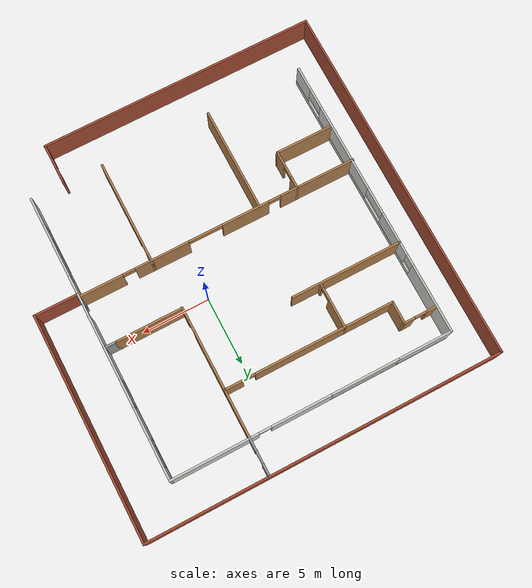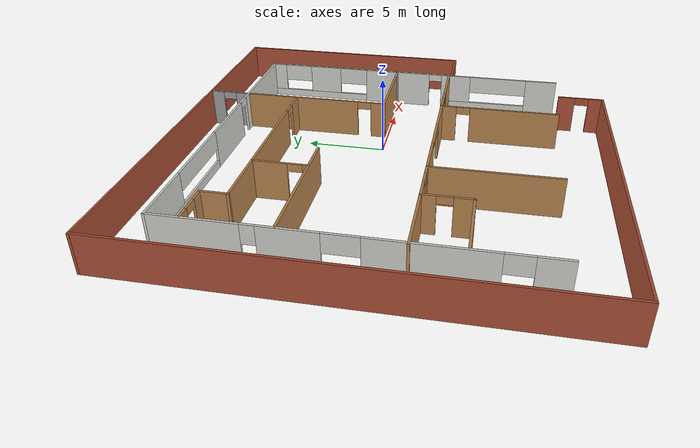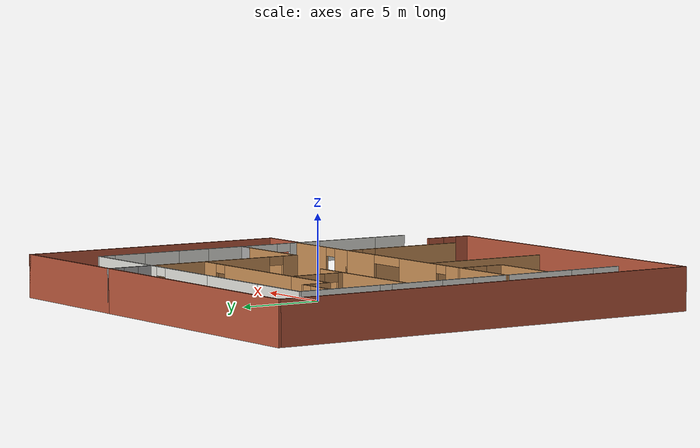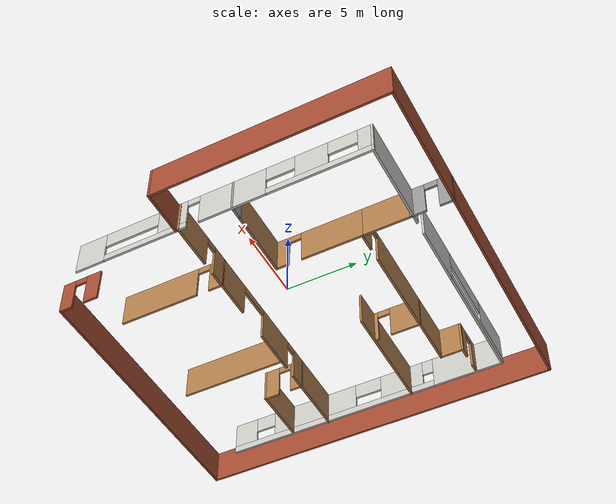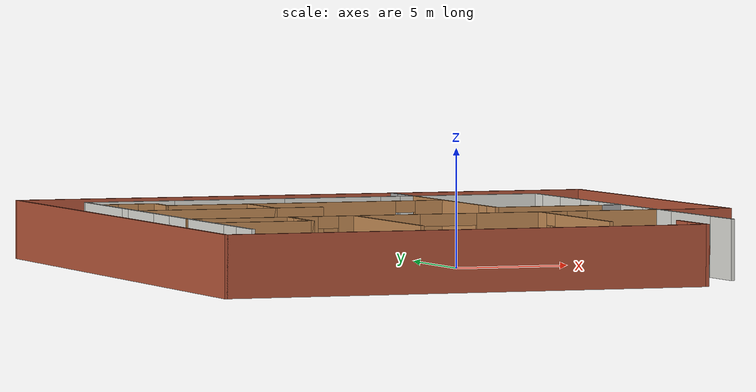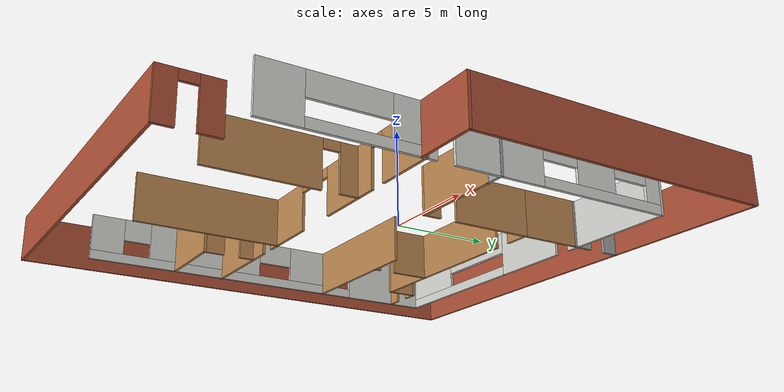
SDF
<?xml version='1.0'?>
<sdf version='1.6'>
  <model name='myWorld'>
    <pose frame=''>-2.2264 -0.874367 0 0 -0 0</pose>
    <link name='Wall_0'>
      <pose frame=''>-10.7788 0.167812 0 0 0 -1.5708</pose>
      <visual name='Wall_0_Visual_0'>
        <pose frame=''>-8.06574 0 1.25 0 -0 0</pose>
        <geometry>
          <box>
            <size>5.11851 0.15 2.5</size>
          </box>
        </geometry>
        <material>
          <script>
            <uri>file://media/materials/scripts/gazebo.material</uri>
            <name>Gazebo/CeilingTiled</name>
          </script>
          <ambient>0.435294 0.796078 0.67451 1</ambient>
        </material>
        <meta>
          <layer>0</layer>
        </meta>
      </visual>
      <collision name='Wall_0_Collision_0'>
        <geometry>
          <box>
            <size>5.11851 0.15 2.5</size>
          </box>
        </geometry>
        <pose frame=''>-8.06574 0 1.25 0 -0 0</pose>
      </collision>
      <visual name='Wall_0_Visual_1'>
        <pose frame=''>2.55926 0 0.25 0 -0 0</pose>
        <geometry>
          <box>
            <size>16.1315 0.15 0.5</size>
          </box>
        </geometry>
        <material>
          <script>
            <uri>file://media/materials/scripts/gazebo.material</uri>
            <name>Gazebo/CeilingTiled</name>
          </script>
          <ambient>0.435294 0.796078 0.67451 1</ambient>
        </material>
        <meta>
          <layer>0</layer>
        </meta>
      </visual>
      <collision name='Wall_0_Collision_1'>
        <geometry>
          <box>
            <size>16.1315 0.15 0.5</size>
          </box>
        </geometry>
        <pose frame=''>2.55926 0 0.25 0 -0 0</pose>
      </collision>
      <visual name='Wall_0_Visual_2'>
        <pose frame=''>-3.05702 0 1.5 0 -0 0</pose>
        <geometry>
          <box>
            <size>3.29893 0.15 2</size>
          </box>
        </geometry>
        <material>
          <script>
            <uri>file://media/materials/scripts/gazebo.material</uri>
            <name>Gazebo/CeilingTiled</name>
          </script>
          <ambient>0.435294 0.796078 0.67451 1</ambient>
        </material>
        <meta>
          <layer>0</layer>
        </meta>
      </visual>
      <collision name='Wall_0_Collision_2'>
        <geometry>
          <box>
            <size>3.29893 0.15 2</size>
          </box>
        </geometry>
        <pose frame=''>-3.05702 0 1.5 0 -0 0</pose>
      </collision>
      <visual name='Wall_0_Visual_3'>
        <pose frame=''>3.95094 0 1.5 0 -0 0</pose>
        <geometry>
          <box>
            <size>6.717 0.15 2</size>
          </box>
        </geometry>
        <material>
          <script>
            <uri>file://media/materials/scripts/gazebo.material</uri>
            <name>Gazebo/CeilingTiled</name>
          </script>
          <ambient>0.435294 0.796078 0.67451 1</ambient>
        </material>
        <meta>
          <layer>0</layer>
        </meta>
      </visual>
      <collision name='Wall_0_Collision_3'>
        <geometry>
          <box>
            <size>6.717 0.15 2</size>
          </box>
        </geometry>
        <pose frame=''>3.95094 0 1.5 0 -0 0</pose>
      </collision>
      <visual name='Wall_0_Visual_4'>
        <pose frame=''>9.71722 0 1.5 0 -0 0</pose>
        <geometry>
          <box>
            <size>1.81556 0.15 2</size>
          </box>
        </geometry>
        <material>
          <script>
            <uri>file://media/materials/scripts/gazebo.material</uri>
            <name>Gazebo/CeilingTiled</name>
          </script>
          <ambient>0.435294 0.796078 0.67451 1</ambient>
        </material>
        <meta>
          <layer>0</layer>
        </meta>
      </visual>
      <collision name='Wall_0_Collision_4'>
        <geometry>
          <box>
            <size>1.81556 0.15 2</size>
          </box>
        </geometry>
        <pose frame=''>9.71722 0 1.5 0 -0 0</pose>
      </collision>
      <visual name='Wall_0_Visual_5'>
        <pose frame=''>-5.10649 0 1.9 0 -0 0</pose>
        <geometry>
          <box>
            <size>0.8 0.15 1.2</size>
          </box>
        </geometry>
        <material>
          <script>
            <uri>file://media/materials/scripts/gazebo.material</uri>
            <name>Gazebo/CeilingTiled</name>
          </script>
          <ambient>0.435294 0.796078 0.67451 1</ambient>
        </material>
        <meta>
          <layer>0</layer>
        </meta>
      </visual>
      <collision name='Wall_0_Collision_5'>
        <geometry>
          <box>
            <size>0.8 0.15 1.2</size>
          </box>
        </geometry>
        <pose frame=''>-5.10649 0 1.9 0 -0 0</pose>
      </collision>
      <visual name='Wall_0_Visual_6'>
        <pose frame=''>-0.407555 0 1.9 0 -0 0</pose>
        <geometry>
          <box>
            <size>2 0.15 1.2</size>
          </box>
        </geometry>
        <material>
          <script>
            <uri>file://media/materials/scripts/gazebo.material</uri>
            <name>Gazebo/CeilingTiled</name>
          </script>
          <ambient>0.435294 0.796078 0.67451 1</ambient>
        </material>
        <meta>
          <layer>0</layer>
        </meta>
      </visual>
      <collision name='Wall_0_Collision_6'>
        <geometry>
          <box>
            <size>2 0.15 1.2</size>
          </box>
        </geometry>
        <pose frame=''>-0.407555 0 1.9 0 -0 0</pose>
      </collision>
      <visual name='Wall_0_Visual_7'>
        <pose frame=''>8.05945 0 1.9 0 -0 0</pose>
        <geometry>
          <box>
            <size>1.5 0.15 1.2</size>
          </box>
        </geometry>
        <material>
          <script>
            <uri>file://media/materials/scripts/gazebo.material</uri>
            <name>Gazebo/CeilingTiled</name>
          </script>
          <ambient>0.435294 0.796078 0.67451 1</ambient>
        </material>
        <meta>
          <layer>0</layer>
        </meta>
      </visual>
      <collision name='Wall_0_Collision_7'>
        <geometry>
          <box>
            <size>1.5 0.15 1.2</size>
          </box>
        </geometry>
        <pose frame=''>8.05945 0 1.9 0 -0 0</pose>
      </collision>
    </link>
    <link name='Wall_10'>
      <collision name='Wall_10_Collision'>
        <geometry>
          <box>
            <size>7.75 0.15 2.5</size>
          </box>
        </geometry>
        <pose frame=''>0 0 1.25 0 -0 0</pose>
      </collision>
      <visual name='Wall_10_Visual'>
        <pose frame=''>0 0 1.25 0 -0 0</pose>
        <geometry>
          <box>
            <size>7.75 0.15 2.5</size>
          </box>
        </geometry>
        <material>
          <script>
            <uri>file://media/materials/scripts/gazebo.material</uri>
            <name>Gazebo/Wood</name>
          </script>
          <ambient>1 1 1 1</ambient>
        </material>
        <meta>
          <layer>0</layer>
        </meta>
      </visual>
      <pose frame=''>-3.63916 -6.5453 0 0 0 -1.5708</pose>
    </link>
    <link name='Wall_109'>
      <pose frame=''>4.125 12 0 0 -0 1.5708</pose>
      <visual name='Wall_109_Visual_0'>
        <pose frame=''>-0.939554 0 1.25 0 -0 0</pose>
        <geometry>
          <box>
            <size>1.12089 0.15 2.5</size>
          </box>
        </geometry>
        <material>
          <script>
            <uri>file://media/materials/scripts/gazebo.material</uri>
            <name>Gazebo/Grey</name>
          </script>
          <ambient>1 1 1 1</ambient>
        </material>
        <meta>
          <layer>0</layer>
        </meta>
      </visual>
      <collision name='Wall_109_Collision_0'>
        <geometry>
          <box>
            <size>1.12089 0.15 2.5</size>
          </box>
        </geometry>
        <pose frame=''>-0.939554 0 1.25 0 -0 0</pose>
      </collision>
      <visual name='Wall_109_Visual_1'>
        <pose frame=''>1.01045 0 1.25 0 -0 0</pose>
        <geometry>
          <box>
            <size>0.979109 0.15 2.5</size>
          </box>
        </geometry>
        <material>
          <script>
            <uri>file://media/materials/scripts/gazebo.material</uri>
            <name>Gazebo/Grey</name>
          </script>
          <ambient>1 1 1 1</ambient>
        </material>
        <meta>
          <layer>0</layer>
        </meta>
      </visual>
      <collision name='Wall_109_Collision_1'>
        <geometry>
          <box>
            <size>0.979109 0.15 2.5</size>
          </box>
        </geometry>
        <pose frame=''>1.01045 0 1.25 0 -0 0</pose>
      </collision>
      <visual name='Wall_109_Visual_2'>
        <pose frame=''>0.070891 0 2.25 0 -0 0</pose>
        <geometry>
          <box>
            <size>0.9 0.15 0.5</size>
          </box>
        </geometry>
        <material>
          <script>
            <uri>file://media/materials/scripts/gazebo.material</uri>
            <name>Gazebo/Grey</name>
          </script>
          <ambient>1 1 1 1</ambient>
        </material>
        <meta>
          <layer>0</layer>
        </meta>
      </visual>
      <collision name='Wall_109_Collision_2'>
        <geometry>
          <box>
            <size>0.9 0.15 0.5</size>
          </box>
        </geometry>
        <pose frame=''>0.070891 0 2.25 0 -0 0</pose>
      </collision>
    </link>
    <link name='Wall_110'>
      <collision name='Wall_110_Collision'>
        <geometry>
          <box>
            <size>17.25 0.15 2.5</size>
          </box>
        </geometry>
        <pose frame=''>0 0 1.25 0 -0 0</pose>
      </collision>
      <visual name='Wall_110_Visual'>
        <pose frame=''>0 0 1.25 0 -0 0</pose>
        <geometry>
          <box>
            <size>17.25 0.15 2.5</size>
          </box>
        </geometry>
        <material>
          <script>
            <uri>file://media/materials/scripts/gazebo.material</uri>
            <name>Gazebo/Bricks</name>
          </script>
          <ambient>1 1 1 1</ambient>
        </material>
        <meta>
          <layer>0</layer>
        </meta>
      </visual>
      <pose frame=''>-4.425 13.425 0 0 -0 3.14159</pose>
    </link>
    <link name='Wall_111'>
      <collision name='Wall_111_Collision'>
        <geometry>
          <box>
            <size>27 0.15 2.5</size>
          </box>
        </geometry>
        <pose frame=''>0 0 1.25 0 -0 0</pose>
      </collision>
      <visual name='Wall_111_Visual'>
        <pose frame=''>0 0 1.25 0 -0 0</pose>
        <geometry>
          <box>
            <size>27 0.15 2.5</size>
          </box>
        </geometry>
        <material>
          <script>
            <uri>file://media/materials/scripts/gazebo.material</uri>
            <name>Gazebo/Bricks</name>
          </script>
          <ambient>1 1 1 1</ambient>
        </material>
        <meta>
          <layer>0</layer>
        </meta>
      </visual>
      <pose frame=''>-12.975 0 0 0 0 -1.5708</pose>
    </link>
    <link name='Wall_112'>
      <collision name='Wall_112_Collision'>
        <geometry>
          <box>
            <size>20.5 0.15 2.5</size>
          </box>
        </geometry>
        <pose frame=''>0 0 1.25 0 -0 0</pose>
      </collision>
      <visual name='Wall_112_Visual'>
        <pose frame=''>0 0 1.25 0 -0 0</pose>
        <geometry>
          <box>
            <size>20.5 0.15 2.5</size>
          </box>
        </geometry>
        <material>
          <script>
            <uri>file://media/materials/scripts/gazebo.material</uri>
            <name>Gazebo/Bricks</name>
          </script>
          <ambient>1 1 1 1</ambient>
        </material>
        <meta>
          <layer>0</layer>
        </meta>
      </visual>
      <pose frame=''>-2.8 -13.425 0 0 -0 0</pose>
    </link>
    <link name='Wall_113'>
      <pose frame=''>7.375 -12 0 0 -0 1.5708</pose>
      <visual name='Wall_113_Visual_0'>
        <pose frame=''>-1.00437 0 1.25 0 -0 0</pose>
        <geometry>
          <box>
            <size>0.991263 0.15 2.5</size>
          </box>
        </geometry>
        <material>
          <script>
            <uri>file://media/materials/scripts/gazebo.material</uri>
            <name>Gazebo/Bricks</name>
          </script>
          <ambient>1 1 1 1</ambient>
        </material>
        <meta>
          <layer>0</layer>
        </meta>
      </visual>
      <collision name='Wall_113_Collision_0'>
        <geometry>
          <box>
            <size>0.991263 0.15 2.5</size>
          </box>
        </geometry>
        <pose frame=''>-1.00437 0 1.25 0 -0 0</pose>
      </collision>
      <visual name='Wall_113_Visual_1'>
        <pose frame=''>0.945632 0 1.25 0 -0 0</pose>
        <geometry>
          <box>
            <size>1.10874 0.15 2.5</size>
          </box>
        </geometry>
        <material>
          <script>
            <uri>file://media/materials/scripts/gazebo.material</uri>
            <name>Gazebo/Bricks</name>
          </script>
          <ambient>1 1 1 1</ambient>
        </material>
        <meta>
          <layer>0</layer>
        </meta>
      </visual>
      <collision name='Wall_113_Collision_1'>
        <geometry>
          <box>
            <size>1.10874 0.15 2.5</size>
          </box>
        </geometry>
        <pose frame=''>0.945632 0 1.25 0 -0 0</pose>
      </collision>
      <visual name='Wall_113_Visual_2'>
        <pose frame=''>-0.058737 0 2.25 0 -0 0</pose>
        <geometry>
          <box>
            <size>0.9 0.15 0.5</size>
          </box>
        </geometry>
        <material>
          <script>
            <uri>file://media/materials/scripts/gazebo.material</uri>
            <name>Gazebo/Bricks</name>
          </script>
          <ambient>1 1 1 1</ambient>
        </material>
        <meta>
          <layer>0</layer>
        </meta>
      </visual>
      <collision name='Wall_113_Collision_2'>
        <geometry>
          <box>
            <size>0.9 0.15 0.5</size>
          </box>
        </geometry>
        <pose frame=''>-0.058737 0 2.25 0 -0 0</pose>
      </collision>
    </link>
    <link name='Wall_115'>
      <collision name='Wall_115_Collision'>
        <geometry>
          <box>
            <size>9 0.15 2.5</size>
          </box>
        </geometry>
        <pose frame=''>0 0 1.25 0 -0 0</pose>
      </collision>
      <visual name='Wall_115_Visual'>
        <pose frame=''>0 0 1.25 0 -0 0</pose>
        <geometry>
          <box>
            <size>9 0.15 2.5</size>
          </box>
        </geometry>
        <material>
          <script>
            <uri>file://media/materials/scripts/gazebo.material</uri>
            <name>Gazebo/Bricks</name>
          </script>
          <ambient>1 1 1 1</ambient>
        </material>
        <meta>
          <layer>0</layer>
        </meta>
      </visual>
      <pose frame=''>8.55 13.425 0 0 -0 0</pose>
    </link>
    <link name='Wall_116'>
      <collision name='Wall_116_Collision'>
        <geometry>
          <box>
            <size>16.5 0.15 2.5</size>
          </box>
        </geometry>
        <pose frame=''>0 0 1.25 0 -0 0</pose>
      </collision>
      <visual name='Wall_116_Visual'>
        <pose frame=''>0 0 1.25 0 -0 0</pose>
        <geometry>
          <box>
            <size>16.5 0.15 2.5</size>
          </box>
        </geometry>
        <material>
          <script>
            <uri>file://media/materials/scripts/gazebo.material</uri>
            <name>Gazebo/Bricks</name>
          </script>
          <ambient>1 1 1 1</ambient>
        </material>
        <meta>
          <layer>0</layer>
        </meta>
      </visual>
      <pose frame=''>12.975 5.25 0 0 0 -1.5708</pose>
    </link>
    <link name='Wall_117'>
      <collision name='Wall_117_Collision'>
        <geometry>
          <box>
            <size>3.25 0.15 2.5</size>
          </box>
        </geometry>
        <pose frame=''>0 0 1.25 0 -0 0</pose>
      </collision>
      <visual name='Wall_117_Visual'>
        <pose frame=''>0 0 1.25 0 -0 0</pose>
        <geometry>
          <box>
            <size>3.25 0.15 2.5</size>
          </box>
        </geometry>
        <material>
          <script>
            <uri>file://media/materials/scripts/gazebo.material</uri>
            <name>Gazebo/Bricks</name>
          </script>
          <ambient>1 1 1 1</ambient>
        </material>
        <meta>
          <layer>0</layer>
        </meta>
      </visual>
      <pose frame=''>11.425 -2.925 0 0 -0 3.14159</pose>
    </link>
    <link name='Wall_12'>
      <collision name='Wall_12_Collision'>
        <geometry>
          <box>
            <size>8.25 0.15 2.5</size>
          </box>
        </geometry>
        <pose frame=''>0 0 1.25 0 -0 0</pose>
      </collision>
      <visual name='Wall_12_Visual'>
        <pose frame=''>0 0 1.25 0 -0 0</pose>
        <geometry>
          <box>
            <size>8.25 0.15 2.5</size>
          </box>
        </geometry>
        <material>
          <script>
            <uri>file://media/materials/scripts/gazebo.material</uri>
            <name>Gazebo/Wood</name>
          </script>
          <ambient>1 1 1 1</ambient>
        </material>
        <meta>
          <layer>0</layer>
        </meta>
      </visual>
      <pose frame=''>-6.72078 3.875 0 0 -0 0</pose>
    </link>
    <link name='Wall_14'>
      <pose frame=''>-4.725 5.55 0 0 -0 1.5708</pose>
      <visual name='Wall_14_Visual_0'>
        <pose frame=''>-1.54025 0 1.25 0 -0 0</pose>
        <geometry>
          <box>
            <size>0.419489 0.15 2.5</size>
          </box>
        </geometry>
        <material>
          <script>
            <uri>file://media/materials/scripts/gazebo.material</uri>
            <name>Gazebo/Wood</name>
          </script>
          <ambient>1 1 1 1</ambient>
        </material>
        <meta>
          <layer>0</layer>
        </meta>
      </visual>
      <collision name='Wall_14_Collision_0'>
        <geometry>
          <box>
            <size>0.419489 0.15 2.5</size>
          </box>
        </geometry>
        <pose frame=''>-1.54025 0 1.25 0 -0 0</pose>
      </collision>
      <visual name='Wall_14_Visual_1'>
        <pose frame=''>0.659745 0 1.25 0 -0 0</pose>
        <geometry>
          <box>
            <size>2.18051 0.15 2.5</size>
          </box>
        </geometry>
        <material>
          <script>
            <uri>file://media/materials/scripts/gazebo.material</uri>
            <name>Gazebo/Wood</name>
          </script>
          <ambient>1 1 1 1</ambient>
        </material>
        <meta>
          <layer>0</layer>
        </meta>
      </visual>
      <collision name='Wall_14_Collision_1'>
        <geometry>
          <box>
            <size>2.18051 0.15 2.5</size>
          </box>
        </geometry>
        <pose frame=''>0.659745 0 1.25 0 -0 0</pose>
      </collision>
      <visual name='Wall_14_Visual_2'>
        <pose frame=''>-0.880511 0 2.25 0 -0 0</pose>
        <geometry>
          <box>
            <size>0.9 0.15 0.5</size>
          </box>
        </geometry>
        <material>
          <script>
            <uri>file://media/materials/scripts/gazebo.material</uri>
            <name>Gazebo/Wood</name>
          </script>
          <ambient>1 1 1 1</ambient>
        </material>
        <meta>
          <layer>0</layer>
        </meta>
      </visual>
      <collision name='Wall_14_Collision_2'>
        <geometry>
          <box>
            <size>0.9 0.15 0.5</size>
          </box>
        </geometry>
        <pose frame=''>-0.880511 0 2.25 0 -0 0</pose>
      </collision>
    </link>
    <link name='Wall_15'>
      <pose frame=''>-0.299999 7.225 0 0 -0 0</pose>
      <visual name='Wall_15_Visual_0'>
        <pose frame=''>-1.14864 0 1.25 0 -0 0</pose>
        <geometry>
          <box>
            <size>6.70272 0.15 2.5</size>
          </box>
        </geometry>
        <material>
          <script>
            <uri>file://media/materials/scripts/gazebo.material</uri>
            <name>Gazebo/Wood</name>
          </script>
          <ambient>1 1 1 1</ambient>
        </material>
        <meta>
          <layer>0</layer>
        </meta>
      </visual>
      <collision name='Wall_15_Collision_0'>
        <geometry>
          <box>
            <size>6.70272 0.15 2.5</size>
          </box>
        </geometry>
        <pose frame=''>-1.14864 0 1.25 0 -0 0</pose>
      </collision>
      <visual name='Wall_15_Visual_1'>
        <pose frame=''>3.80136 0 1.25 0 -0 0</pose>
        <geometry>
          <box>
            <size>1.39728 0.15 2.5</size>
          </box>
        </geometry>
        <material>
          <script>
            <uri>file://media/materials/scripts/gazebo.material</uri>
            <name>Gazebo/Wood</name>
          </script>
          <ambient>1 1 1 1</ambient>
        </material>
        <meta>
          <layer>0</layer>
        </meta>
      </visual>
      <collision name='Wall_15_Collision_1'>
        <geometry>
          <box>
            <size>1.39728 0.15 2.5</size>
          </box>
        </geometry>
        <pose frame=''>3.80136 0 1.25 0 -0 0</pose>
      </collision>
      <visual name='Wall_15_Visual_2'>
        <pose frame=''>2.65272 0 2.25 0 -0 0</pose>
        <geometry>
          <box>
            <size>0.9 0.15 0.5</size>
          </box>
        </geometry>
        <material>
          <script>
            <uri>file://media/materials/scripts/gazebo.material</uri>
            <name>Gazebo/Wood</name>
          </script>
          <ambient>1 1 1 1</ambient>
        </material>
        <meta>
          <layer>0</layer>
        </meta>
      </visual>
      <collision name='Wall_15_Collision_2'>
        <geometry>
          <box>
            <size>0.9 0.15 0.5</size>
          </box>
        </geometry>
        <pose frame=''>2.65272 0 2.25 0 -0 0</pose>
      </collision>
    </link>
    <link name='Wall_16'>
      <pose frame=''>4.125 4.175 0 0 0 -1.5708</pose>
      <visual name='Wall_16_Visual_0'>
        <pose frame=''>-0.941433 0 1.25 0 -0 0</pose>
        <geometry>
          <box>
            <size>4.36714 0.15 2.5</size>
          </box>
        </geometry>
        <material>
          <script>
            <uri>file://media/materials/scripts/gazebo.material</uri>
            <name>Gazebo/Wood</name>
          </script>
          <ambient>1 1 1 1</ambient>
        </material>
        <meta>
          <layer>0</layer>
        </meta>
      </visual>
      <collision name='Wall_16_Collision_0'>
        <geometry>
          <box>
            <size>4.36714 0.15 2.5</size>
          </box>
        </geometry>
        <pose frame=''>-0.941433 0 1.25 0 -0 0</pose>
      </collision>
      <visual name='Wall_16_Visual_1'>
        <pose frame=''>2.63357 0 1.25 0 -0 0</pose>
        <geometry>
          <box>
            <size>0.982865 0.15 2.5</size>
          </box>
        </geometry>
        <material>
          <script>
            <uri>file://media/materials/scripts/gazebo.material</uri>
            <name>Gazebo/Wood</name>
          </script>
          <ambient>1 1 1 1</ambient>
        </material>
        <meta>
          <layer>0</layer>
        </meta>
      </visual>
      <collision name='Wall_16_Collision_1'>
        <geometry>
          <box>
            <size>0.982865 0.15 2.5</size>
          </box>
        </geometry>
        <pose frame=''>2.63357 0 1.25 0 -0 0</pose>
      </collision>
      <visual name='Wall_16_Visual_2'>
        <pose frame=''>1.69213 0 2.25 0 -0 0</pose>
        <geometry>
          <box>
            <size>0.9 0.15 0.5</size>
          </box>
        </geometry>
        <material>
          <script>
            <uri>file://media/materials/scripts/gazebo.material</uri>
            <name>Gazebo/Wood</name>
          </script>
          <ambient>1 1 1 1</ambient>
        </material>
        <meta>
          <layer>0</layer>
        </meta>
      </visual>
      <collision name='Wall_16_Collision_2'>
        <geometry>
          <box>
            <size>0.9 0.15 0.5</size>
          </box>
        </geometry>
        <pose frame=''>1.69213 0 2.25 0 -0 0</pose>
      </collision>
    </link>
    <link name='Wall_17'>
      <collision name='Wall_17_Collision'>
        <geometry>
          <box>
            <size>5 0.15 2.5</size>
          </box>
        </geometry>
        <pose frame=''>0 0 1.25 0 -0 0</pose>
      </collision>
      <visual name='Wall_17_Visual'>
        <pose frame=''>0 0 1.25 0 -0 0</pose>
        <geometry>
          <box>
            <size>5 0.15 2.5</size>
          </box>
        </geometry>
        <material>
          <script>
            <uri>file://media/materials/scripts/gazebo.material</uri>
            <name>Gazebo/Wood</name>
          </script>
          <ambient>1 1 1 1</ambient>
        </material>
        <meta>
          <layer>0</layer>
        </meta>
      </visual>
      <pose frame=''>6.55 1.125 0 0 -0 0</pose>
    </link>
    <link name='Wall_18'>
      <collision name='Wall_18_Collision'>
        <geometry>
          <box>
            <size>1 0.15 2.5</size>
          </box>
        </geometry>
        <pose frame=''>0 0 1.25 0 -0 0</pose>
      </collision>
      <visual name='Wall_18_Visual'>
        <pose frame=''>0 0 1.25 0 -0 0</pose>
        <geometry>
          <box>
            <size>1 0.15 2.5</size>
          </box>
        </geometry>
        <material>
          <script>
            <uri>file://media/materials/scripts/gazebo.material</uri>
            <name>Gazebo/Grey</name>
          </script>
          <ambient>1 1 1 1</ambient>
        </material>
        <meta>
          <layer>0</layer>
        </meta>
      </visual>
      <pose frame=''>9.4 1.125 0 0 -0 0</pose>
    </link>
    <link name='Wall_2'>
      <pose frame=''>9.82118 0.167812 0 0 -0 1.5708</pose>
      <visual name='Wall_2_Visual_0'>
        <pose frame=''>-9.55148 0 1.25 0 -0 0</pose>
        <geometry>
          <box>
            <size>2.14703 0.15 2.5</size>
          </box>
        </geometry>
        <material>
          <script>
            <uri>file://media/materials/scripts/gazebo.material</uri>
            <name>Gazebo/CeilingTiled</name>
          </script>
          <ambient>0.435294 0.796078 0.67451 1</ambient>
        </material>
        <meta>
          <layer>0</layer>
        </meta>
      </visual>
      <collision name='Wall_2_Collision_0'>
        <geometry>
          <box>
            <size>2.14703 0.15 2.5</size>
          </box>
        </geometry>
        <pose frame=''>-9.55148 0 1.25 0 -0 0</pose>
      </collision>
      <visual name='Wall_2_Visual_1'>
        <pose frame=''>0.932508 0 1.25 0 -0 0</pose>
        <geometry>
          <box>
            <size>4.76615 0.15 2.5</size>
          </box>
        </geometry>
        <material>
          <script>
            <uri>file://media/materials/scripts/gazebo.material</uri>
            <name>Gazebo/CeilingTiled</name>
          </script>
          <ambient>0.435294 0.796078 0.67451 1</ambient>
        </material>
        <meta>
          <layer>0</layer>
        </meta>
      </visual>
      <collision name='Wall_2_Collision_1'>
        <geometry>
          <box>
            <size>4.76615 0.15 2.5</size>
          </box>
        </geometry>
        <pose frame=''>0.932508 0 1.25 0 -0 0</pose>
      </collision>
      <visual name='Wall_2_Visual_2'>
        <pose frame=''>-5.41427 0 0.25 0 -0 0</pose>
        <geometry>
          <box>
            <size>6.1274 0.15 0.5</size>
          </box>
        </geometry>
        <material>
          <script>
            <uri>file://media/materials/scripts/gazebo.material</uri>
            <name>Gazebo/CeilingTiled</name>
          </script>
          <ambient>0.435294 0.796078 0.67451 1</ambient>
        </material>
        <meta>
          <layer>0</layer>
        </meta>
      </visual>
      <collision name='Wall_2_Collision_2'>
        <geometry>
          <box>
            <size>6.1274 0.15 0.5</size>
          </box>
        </geometry>
        <pose frame=''>-5.41427 0 0.25 0 -0 0</pose>
      </collision>
      <visual name='Wall_2_Visual_3'>
        <pose frame=''>6.97029 0 0.25 0 -0 0</pose>
        <geometry>
          <box>
            <size>7.30942 0.15 0.5</size>
          </box>
        </geometry>
        <material>
          <script>
            <uri>file://media/materials/scripts/gazebo.material</uri>
            <name>Gazebo/CeilingTiled</name>
          </script>
          <ambient>0.435294 0.796078 0.67451 1</ambient>
        </material>
        <meta>
          <layer>0</layer>
        </meta>
      </visual>
      <collision name='Wall_2_Collision_3'>
        <geometry>
          <box>
            <size>7.30942 0.15 0.5</size>
          </box>
        </geometry>
        <pose frame=''>6.97029 0 0.25 0 -0 0</pose>
      </collision>
      <visual name='Wall_2_Visual_4'>
        <pose frame=''>-3.41427 0 1.5 0 -0 0</pose>
        <geometry>
          <box>
            <size>2.1274 0.15 2</size>
          </box>
        </geometry>
        <material>
          <script>
            <uri>file://media/materials/scripts/gazebo.material</uri>
            <name>Gazebo/CeilingTiled</name>
          </script>
          <ambient>0.435294 0.796078 0.67451 1</ambient>
        </material>
        <meta>
          <layer>0</layer>
        </meta>
      </visual>
      <collision name='Wall_2_Collision_4'>
        <geometry>
          <box>
            <size>2.1274 0.15 2</size>
          </box>
        </geometry>
        <pose frame=''>-3.41427 0 1.5 0 -0 0</pose>
      </collision>
      <visual name='Wall_2_Visual_5'>
        <pose frame=''>-3.41427 0 1.5 0 -0 0</pose>
        <geometry>
          <box>
            <size>2.1274 0.15 2</size>
          </box>
        </geometry>
        <material>
          <script>
            <uri>file://media/materials/scripts/gazebo.material</uri>
            <name>Gazebo/CeilingTiled</name>
          </script>
          <ambient>0.435294 0.796078 0.67451 1</ambient>
        </material>
        <meta>
          <layer>0</layer>
        </meta>
      </visual>
      <collision name='Wall_2_Collision_5'>
        <geometry>
          <box>
            <size>2.1274 0.15 2</size>
          </box>
        </geometry>
        <pose frame=''>-3.41427 0 1.5 0 -0 0</pose>
      </collision>
      <visual name='Wall_2_Visual_6'>
        <pose frame=''>6.45568 0 1.5 0 -0 0</pose>
        <geometry>
          <box>
            <size>2.2802 0.15 2</size>
          </box>
        </geometry>
        <material>
          <script>
            <uri>file://media/materials/scripts/gazebo.material</uri>
            <name>Gazebo/CeilingTiled</name>
          </script>
          <ambient>0.435294 0.796078 0.67451 1</ambient>
        </material>
        <meta>
          <layer>0</layer>
        </meta>
      </visual>
      <collision name='Wall_2_Collision_6'>
        <geometry>
          <box>
            <size>2.2802 0.15 2</size>
          </box>
        </geometry>
        <pose frame=''>6.45568 0 1.5 0 -0 0</pose>
      </collision>
      <visual name='Wall_2_Visual_7'>
        <pose frame=''>10.1104 0 1.5 0 -0 0</pose>
        <geometry>
          <box>
            <size>1.02922 0.15 2</size>
          </box>
        </geometry>
        <material>
          <script>
            <uri>file://media/materials/scripts/gazebo.material</uri>
            <name>Gazebo/CeilingTiled</name>
          </script>
          <ambient>0.435294 0.796078 0.67451 1</ambient>
        </material>
        <meta>
          <layer>0</layer>
        </meta>
      </visual>
      <collision name='Wall_2_Collision_7'>
        <geometry>
          <box>
            <size>1.02922 0.15 2</size>
          </box>
        </geometry>
        <pose frame=''>10.1104 0 1.5 0 -0 0</pose>
      </collision>
      <visual name='Wall_2_Visual_8'>
        <pose frame=''>-6.47797 0 1.9 0 -0 0</pose>
        <geometry>
          <box>
            <size>4 0.15 1.2</size>
          </box>
        </geometry>
        <material>
          <script>
            <uri>file://media/materials/scripts/gazebo.material</uri>
            <name>Gazebo/CeilingTiled</name>
          </script>
          <ambient>0.435294 0.796078 0.67451 1</ambient>
        </material>
        <meta>
          <layer>0</layer>
        </meta>
      </visual>
      <collision name='Wall_2_Collision_8'>
        <geometry>
          <box>
            <size>4 0.15 1.2</size>
          </box>
        </geometry>
        <pose frame=''>-6.47797 0 1.9 0 -0 0</pose>
      </collision>
      <visual name='Wall_2_Visual_9'>
        <pose frame=''>4.31558 0 1.9 0 -0 0</pose>
        <geometry>
          <box>
            <size>2 0.15 1.2</size>
          </box>
        </geometry>
        <material>
          <script>
            <uri>file://media/materials/scripts/gazebo.material</uri>
            <name>Gazebo/CeilingTiled</name>
          </script>
          <ambient>0.435294 0.796078 0.67451 1</ambient>
        </material>
        <meta>
          <layer>0</layer>
        </meta>
      </visual>
      <collision name='Wall_2_Collision_9'>
        <geometry>
          <box>
            <size>2 0.15 1.2</size>
          </box>
        </geometry>
        <pose frame=''>4.31558 0 1.9 0 -0 0</pose>
      </collision>
      <visual name='Wall_2_Visual_10'>
        <pose frame=''>8.59578 0 1.9 0 -0 0</pose>
        <geometry>
          <box>
            <size>2 0.15 1.2</size>
          </box>
        </geometry>
        <material>
          <script>
            <uri>file://media/materials/scripts/gazebo.material</uri>
            <name>Gazebo/CeilingTiled</name>
          </script>
          <ambient>0.435294 0.796078 0.67451 1</ambient>
        </material>
        <meta>
          <layer>0</layer>
        </meta>
      </visual>
      <collision name='Wall_2_Collision_10'>
        <geometry>
          <box>
            <size>2 0.15 1.2</size>
          </box>
        </geometry>
        <pose frame=''>8.59578 0 1.9 0 -0 0</pose>
      </collision>
      <visual name='Wall_2_Visual_11'>
        <pose frame=''>-1.90057 0 2.25 0 -0 0</pose>
        <geometry>
          <box>
            <size>0.9 0.15 0.5</size>
          </box>
        </geometry>
        <material>
          <script>
            <uri>file://media/materials/scripts/gazebo.material</uri>
            <name>Gazebo/CeilingTiled</name>
          </script>
          <ambient>0.435294 0.796078 0.67451 1</ambient>
        </material>
        <meta>
          <layer>0</layer>
        </meta>
      </visual>
      <collision name='Wall_2_Collision_11'>
        <geometry>
          <box>
            <size>0.9 0.15 0.5</size>
          </box>
        </geometry>
        <pose frame=''>-1.90057 0 2.25 0 -0 0</pose>
      </collision>
      <visual name='Wall_2_Visual_12'>
        <pose frame=''>-1.90057 0 2.25 0 -0 0</pose>
        <geometry>
          <box>
            <size>0.9 0.15 0.5</size>
          </box>
        </geometry>
        <material>
          <script>
            <uri>file://media/materials/scripts/gazebo.material</uri>
            <name>Gazebo/CeilingTiled</name>
          </script>
          <ambient>0.435294 0.796078 0.67451 1</ambient>
        </material>
        <meta>
          <layer>0</layer>
        </meta>
      </visual>
      <collision name='Wall_2_Collision_12'>
        <geometry>
          <box>
            <size>0.9 0.15 0.5</size>
          </box>
        </geometry>
        <pose frame=''>-1.90057 0 2.25 0 -0 0</pose>
      </collision>
    </link>
    <link name='Wall_20'>
      <collision name='Wall_20_Collision'>
        <geometry>
          <box>
            <size>3.5 0.15 2.5</size>
          </box>
        </geometry>
        <pose frame=''>0 0 1.25 0 -0 0</pose>
      </collision>
      <visual name='Wall_20_Visual'>
        <pose frame=''>0 0 1.25 0 -0 0</pose>
        <geometry>
          <box>
            <size>3.5 0.15 2.5</size>
          </box>
        </geometry>
        <material>
          <script>
            <uri>file://media/materials/scripts/gazebo.material</uri>
            <name>Gazebo/Wood</name>
          </script>
          <ambient>1 1 1 1</ambient>
        </material>
        <meta>
          <layer>0</layer>
        </meta>
      </visual>
      <pose frame=''>4.125 8.9 0 0 -0 1.5708</pose>
    </link>
    <link name='Wall_22'>
      <collision name='Wall_22_Collision'>
        <geometry>
          <box>
            <size>3.75 0.15 2.5</size>
          </box>
        </geometry>
        <pose frame=''>0 0 1.25 0 -0 0</pose>
      </collision>
      <visual name='Wall_22_Visual'>
        <pose frame=''>0 0 1.25 0 -0 0</pose>
        <geometry>
          <box>
            <size>3.75 0.15 2.5</size>
          </box>
        </geometry>
        <material>
          <script>
            <uri>file://media/materials/scripts/gazebo.material</uri>
            <name>Gazebo/Wood</name>
          </script>
          <ambient>1 1 1 1</ambient>
        </material>
        <meta>
          <layer>0</layer>
        </meta>
      </visual>
      <pose frame=''>-6.525 7.225 0 0 -0 3.14159</pose>
    </link>
    <link name='Wall_23'>
      <collision name='Wall_23_Collision'>
        <geometry>
          <box>
            <size>1.75 0.15 2.5</size>
          </box>
        </geometry>
        <pose frame=''>0 0 1.25 0 -0 0</pose>
      </collision>
      <visual name='Wall_23_Visual'>
        <pose frame=''>0 0 1.25 0 -0 0</pose>
        <geometry>
          <box>
            <size>1.75 0.15 2.5</size>
          </box>
        </geometry>
        <material>
          <script>
            <uri>file://media/materials/scripts/gazebo.material</uri>
            <name>Gazebo/Wood</name>
          </script>
          <ambient>1 1 1 1</ambient>
        </material>
        <meta>
          <layer>0</layer>
        </meta>
      </visual>
      <pose frame=''>-8.325 8.025 0 0 -0 1.5708</pose>
    </link>
    <link name='Wall_24'>
      <pose frame=''>-9.5 8.825 0 0 -0 3.14159</pose>
      <visual name='Wall_24_Visual_0'>
        <pose frame=''>-0.821298 0 1.25 0 -0 0</pose>
        <geometry>
          <box>
            <size>0.857405 0.15 2.5</size>
          </box>
        </geometry>
        <material>
          <script>
            <uri>file://media/materials/scripts/gazebo.material</uri>
            <name>Gazebo/Wood</name>
          </script>
          <ambient>1 1 1 1</ambient>
        </material>
        <meta>
          <layer>0</layer>
        </meta>
      </visual>
      <collision name='Wall_24_Collision_0'>
        <geometry>
          <box>
            <size>0.857405 0.15 2.5</size>
          </box>
        </geometry>
        <pose frame=''>-0.821298 0 1.25 0 -0 0</pose>
      </collision>
      <visual name='Wall_24_Visual_1'>
        <pose frame=''>0.878702 0 1.25 0 -0 0</pose>
        <geometry>
          <box>
            <size>0.742595 0.15 2.5</size>
          </box>
        </geometry>
        <material>
          <script>
            <uri>file://media/materials/scripts/gazebo.material</uri>
            <name>Gazebo/Wood</name>
          </script>
          <ambient>1 1 1 1</ambient>
        </material>
        <meta>
          <layer>0</layer>
        </meta>
      </visual>
      <collision name='Wall_24_Collision_1'>
        <geometry>
          <box>
            <size>0.742595 0.15 2.5</size>
          </box>
        </geometry>
        <pose frame=''>0.878702 0 1.25 0 -0 0</pose>
      </collision>
      <visual name='Wall_24_Visual_2'>
        <pose frame=''>0.057405 0 2.25 0 -0 0</pose>
        <geometry>
          <box>
            <size>0.9 0.15 0.5</size>
          </box>
        </geometry>
        <material>
          <script>
            <uri>file://media/materials/scripts/gazebo.material</uri>
            <name>Gazebo/Wood</name>
          </script>
          <ambient>1 1 1 1</ambient>
        </material>
        <meta>
          <layer>0</layer>
        </meta>
      </visual>
      <collision name='Wall_24_Collision_2'>
        <geometry>
          <box>
            <size>0.9 0.15 0.5</size>
          </box>
        </geometry>
        <pose frame=''>0.057405 0 2.25 0 -0 0</pose>
      </collision>
    </link>
    <link name='Wall_26'>
      <pose frame=''>-6.53335 -4.15281 0 0 0 -1.5708</pose>
      <visual name='Wall_26_Visual_0'>
        <pose frame=''>-1.03617 0 1.25 0 -0 0</pose>
        <geometry>
          <box>
            <size>0.927669 0.15 2.5</size>
          </box>
        </geometry>
        <material>
          <script>
            <uri>file://media/materials/scripts/gazebo.material</uri>
            <name>Gazebo/Wood</name>
          </script>
          <ambient>1 1 1 1</ambient>
        </material>
        <meta>
          <layer>0</layer>
        </meta>
      </visual>
      <collision name='Wall_26_Collision_0'>
        <geometry>
          <box>
            <size>0.927669 0.15 2.5</size>
          </box>
        </geometry>
        <pose frame=''>-1.03617 0 1.25 0 -0 0</pose>
      </collision>
      <visual name='Wall_26_Visual_1'>
        <pose frame=''>0.913835 0 1.25 0 -0 0</pose>
        <geometry>
          <box>
            <size>1.17233 0.15 2.5</size>
          </box>
        </geometry>
        <material>
          <script>
            <uri>file://media/materials/scripts/gazebo.material</uri>
            <name>Gazebo/Wood</name>
          </script>
          <ambient>1 1 1 1</ambient>
        </material>
        <meta>
          <layer>0</layer>
        </meta>
      </visual>
      <collision name='Wall_26_Collision_1'>
        <geometry>
          <box>
            <size>1.17233 0.15 2.5</size>
          </box>
        </geometry>
        <pose frame=''>0.913835 0 1.25 0 -0 0</pose>
      </collision>
      <visual name='Wall_26_Visual_2'>
        <pose frame=''>-0.122331 0 2.25 0 -0 0</pose>
        <geometry>
          <box>
            <size>0.9 0.15 0.5</size>
          </box>
        </geometry>
        <material>
          <script>
            <uri>file://media/materials/scripts/gazebo.material</uri>
            <name>Gazebo/Wood</name>
          </script>
          <ambient>1 1 1 1</ambient>
        </material>
        <meta>
          <layer>0</layer>
        </meta>
      </visual>
      <collision name='Wall_26_Collision_2'>
        <geometry>
          <box>
            <size>0.9 0.15 0.5</size>
          </box>
        </geometry>
        <pose frame=''>-0.122331 0 2.25 0 -0 0</pose>
      </collision>
    </link>
    <link name='Wall_27'>
      <collision name='Wall_27_Collision'>
        <geometry>
          <box>
            <size>4.25 0.15 2.5</size>
          </box>
        </geometry>
        <pose frame=''>0 0 1.25 0 -0 0</pose>
      </collision>
      <visual name='Wall_27_Visual'>
        <pose frame=''>0 0 1.25 0 -0 0</pose>
        <geometry>
          <box>
            <size>4.25 0.15 2.5</size>
          </box>
        </geometry>
        <material>
          <script>
            <uri>file://media/materials/scripts/gazebo.material</uri>
            <name>Gazebo/Wood</name>
          </script>
          <ambient>1 1 1 1</ambient>
        </material>
        <meta>
          <layer>0</layer>
        </meta>
      </visual>
      <pose frame=''>-8.58335 -5.57781 0 0 -0 3.14159</pose>
    </link>
    <link name='Wall_3'>
      <pose frame=''>-0.478823 10.7178 0 0 -0 3.14159</pose>
      <visual name='Wall_3_Visual_0'>
        <pose frame=''>-7.15394 0 1.25 0 -0 0</pose>
        <geometry>
          <box>
            <size>6.44212 0.15 2.5</size>
          </box>
        </geometry>
        <material>
          <script>
            <uri>file://media/materials/scripts/gazebo.material</uri>
            <name>Gazebo/CeilingTiled</name>
          </script>
          <ambient>0.435294 0.796078 0.67451 1</ambient>
        </material>
        <meta>
          <layer>0</layer>
        </meta>
      </visual>
      <collision name='Wall_3_Collision_0'>
        <geometry>
          <box>
            <size>6.44212 0.15 2.5</size>
          </box>
        </geometry>
        <pose frame=''>-7.15394 0 1.25 0 -0 0</pose>
      </collision>
      <visual name='Wall_3_Visual_1'>
        <pose frame=''>-0.832486 0 1.25 0 -0 0</pose>
        <geometry>
          <box>
            <size>4.40078 0.15 2.5</size>
          </box>
        </geometry>
        <material>
          <script>
            <uri>file://media/materials/scripts/gazebo.material</uri>
            <name>Gazebo/CeilingTiled</name>
          </script>
          <ambient>0.435294 0.796078 0.67451 1</ambient>
        </material>
        <meta>
          <layer>0</layer>
        </meta>
      </visual>
      <collision name='Wall_3_Collision_1'>
        <geometry>
          <box>
            <size>4.40078 0.15 2.5</size>
          </box>
        </geometry>
        <pose frame=''>-0.832486 0 1.25 0 -0 0</pose>
      </collision>
      <visual name='Wall_3_Visual_2'>
        <pose frame=''>5.87145 0 0.25 0 -0 0</pose>
        <geometry>
          <box>
            <size>9.0071 0.15 0.5</size>
          </box>
        </geometry>
        <material>
          <script>
            <uri>file://media/materials/scripts/gazebo.material</uri>
            <name>Gazebo/CeilingTiled</name>
          </script>
          <ambient>0.435294 0.796078 0.67451 1</ambient>
        </material>
        <meta>
          <layer>0</layer>
        </meta>
      </visual>
      <collision name='Wall_3_Collision_2'>
        <geometry>
          <box>
            <size>9.0071 0.15 0.5</size>
          </box>
        </geometry>
        <pose frame=''>5.87145 0 0.25 0 -0 0</pose>
      </collision>
      <visual name='Wall_3_Visual_3'>
        <pose frame=''>8.37145 0 1.5 0 -0 0</pose>
        <geometry>
          <box>
            <size>4.0071 0.15 2</size>
          </box>
        </geometry>
        <material>
          <script>
            <uri>file://media/materials/scripts/gazebo.material</uri>
            <name>Gazebo/CeilingTiled</name>
          </script>
          <ambient>0.435294 0.796078 0.67451 1</ambient>
        </material>
        <meta>
          <layer>0</layer>
        </meta>
      </visual>
      <collision name='Wall_3_Collision_3'>
        <geometry>
          <box>
            <size>4.0071 0.15 2</size>
          </box>
        </geometry>
        <pose frame=''>8.37145 0 1.5 0 -0 0</pose>
      </collision>
      <visual name='Wall_3_Visual_4'>
        <pose frame=''>3.8679 0 1.9 0 -0 0</pose>
        <geometry>
          <box>
            <size>5 0.15 1.2</size>
          </box>
        </geometry>
        <material>
          <script>
            <uri>file://media/materials/scripts/gazebo.material</uri>
            <name>Gazebo/CeilingTiled</name>
          </script>
          <ambient>0.435294 0.796078 0.67451 1</ambient>
        </material>
        <meta>
          <layer>0</layer>
        </meta>
      </visual>
      <collision name='Wall_3_Collision_4'>
        <geometry>
          <box>
            <size>5 0.15 1.2</size>
          </box>
        </geometry>
        <pose frame=''>3.8679 0 1.9 0 -0 0</pose>
      </collision>
      <visual name='Wall_3_Visual_5'>
        <pose frame=''>-3.48287 0 2.25 0 -0 0</pose>
        <geometry>
          <box>
            <size>0.9 0.15 0.5</size>
          </box>
        </geometry>
        <material>
          <script>
            <uri>file://media/materials/scripts/gazebo.material</uri>
            <name>Gazebo/CeilingTiled</name>
          </script>
          <ambient>0.435294 0.796078 0.67451 1</ambient>
        </material>
        <meta>
          <layer>0</layer>
        </meta>
      </visual>
      <collision name='Wall_3_Collision_5'>
        <geometry>
          <box>
            <size>0.9 0.15 0.5</size>
          </box>
        </geometry>
        <pose frame=''>-3.48287 0 2.25 0 -0 0</pose>
      </collision>
    </link>
    <link name='Wall_5'>
      <pose frame=''>4.50252 -6.52869 0 0 -0 1.5708</pose>
      <visual name='Wall_5_Visual_0'>
        <pose frame=''>-0.98318 0 1.25 0 -0 0</pose>
        <geometry>
          <box>
            <size>5.78364 0.15 2.5</size>
          </box>
        </geometry>
        <material>
          <script>
            <uri>file://media/materials/scripts/gazebo.material</uri>
            <name>Gazebo/Wood</name>
          </script>
          <ambient>1 1 1 1</ambient>
        </material>
        <meta>
          <layer>0</layer>
        </meta>
      </visual>
      <collision name='Wall_5_Collision_0'>
        <geometry>
          <box>
            <size>5.78364 0.15 2.5</size>
          </box>
        </geometry>
        <pose frame=''>-0.98318 0 1.25 0 -0 0</pose>
      </collision>
      <visual name='Wall_5_Visual_1'>
        <pose frame=''>3.34182 0 1.25 0 -0 0</pose>
        <geometry>
          <box>
            <size>1.06636 0.15 2.5</size>
          </box>
        </geometry>
        <material>
          <script>
            <uri>file://media/materials/scripts/gazebo.material</uri>
            <name>Gazebo/Wood</name>
          </script>
          <ambient>1 1 1 1</ambient>
        </material>
        <meta>
          <layer>0</layer>
        </meta>
      </visual>
      <collision name='Wall_5_Collision_1'>
        <geometry>
          <box>
            <size>1.06636 0.15 2.5</size>
          </box>
        </geometry>
        <pose frame=''>3.34182 0 1.25 0 -0 0</pose>
      </collision>
      <visual name='Wall_5_Visual_2'>
        <pose frame=''>2.35864 0 2.25 0 -0 0</pose>
        <geometry>
          <box>
            <size>0.9 0.15 0.5</size>
          </box>
        </geometry>
        <material>
          <script>
            <uri>file://media/materials/scripts/gazebo.material</uri>
            <name>Gazebo/Wood</name>
          </script>
          <ambient>1 1 1 1</ambient>
        </material>
        <meta>
          <layer>0</layer>
        </meta>
      </visual>
      <collision name='Wall_5_Collision_2'>
        <geometry>
          <box>
            <size>0.9 0.15 0.5</size>
          </box>
        </geometry>
        <pose frame=''>2.35864 0 2.25 0 -0 0</pose>
      </collision>
    </link>
    <link name='Wall_6'>
      <pose frame=''>7.17752 -2.72869 0 0 -0 0</pose>
      <visual name='Wall_6_Visual_0'>
        <pose frame=''>-2.10492 0 1.25 0 -0 0</pose>
        <geometry>
          <box>
            <size>1.29015 0.15 2.5</size>
          </box>
        </geometry>
        <material>
          <script>
            <uri>file://media/materials/scripts/gazebo.material</uri>
            <name>Gazebo/Wood</name>
          </script>
          <ambient>1 1 1 1</ambient>
        </material>
        <meta>
          <layer>0</layer>
        </meta>
      </visual>
      <collision name='Wall_6_Collision_0'>
        <geometry>
          <box>
            <size>1.29015 0.15 2.5</size>
          </box>
        </geometry>
        <pose frame=''>-2.10492 0 1.25 0 -0 0</pose>
      </collision>
      <visual name='Wall_6_Visual_1'>
        <pose frame=''>1.09508 0 1.25 0 -0 0</pose>
        <geometry>
          <box>
            <size>3.30985 0.15 2.5</size>
          </box>
        </geometry>
        <material>
          <script>
            <uri>file://media/materials/scripts/gazebo.material</uri>
            <name>Gazebo/Wood</name>
          </script>
          <ambient>1 1 1 1</ambient>
        </material>
        <meta>
          <layer>0</layer>
        </meta>
      </visual>
      <collision name='Wall_6_Collision_1'>
        <geometry>
          <box>
            <size>3.30985 0.15 2.5</size>
          </box>
        </geometry>
        <pose frame=''>1.09508 0 1.25 0 -0 0</pose>
      </collision>
      <visual name='Wall_6_Visual_2'>
        <pose frame=''>-1.00985 0 2.25 0 -0 0</pose>
        <geometry>
          <box>
            <size>0.9 0.15 0.5</size>
          </box>
        </geometry>
        <material>
          <script>
            <uri>file://media/materials/scripts/gazebo.material</uri>
            <name>Gazebo/Wood</name>
          </script>
          <ambient>1 1 1 1</ambient>
        </material>
        <meta>
          <layer>0</layer>
        </meta>
      </visual>
      <collision name='Wall_6_Collision_2'>
        <geometry>
          <box>
            <size>0.9 0.15 0.5</size>
          </box>
        </geometry>
        <pose frame=''>-1.00985 0 2.25 0 -0 0</pose>
      </collision>
    </link>
    <link name='Wall_8'>
      <pose frame=''>-3.17248 -2.72869 0 0 -0 3.14159</pose>
      <visual name='Wall_8_Visual_0'>
        <pose frame=''>-6.30886 0 1.25 0 -0 0</pose>
        <geometry>
          <box>
            <size>2.88229 0.15 2.5</size>
          </box>
        </geometry>
        <material>
          <script>
            <uri>file://media/materials/scripts/gazebo.material</uri>
            <name>Gazebo/Wood</name>
          </script>
          <ambient>1 1 1 1</ambient>
        </material>
        <meta>
          <layer>0</layer>
        </meta>
      </visual>
      <collision name='Wall_8_Collision_0'>
        <geometry>
          <box>
            <size>2.88229 0.15 2.5</size>
          </box>
        </geometry>
        <pose frame=''>-6.30886 0 1.25 0 -0 0</pose>
      </collision>
      <visual name='Wall_8_Visual_1'>
        <pose frame=''>-0.589112 0 1.25 0 -0 0</pose>
        <geometry>
          <box>
            <size>3.5572 0.15 2.5</size>
          </box>
        </geometry>
        <material>
          <script>
            <uri>file://media/materials/scripts/gazebo.material</uri>
            <name>Gazebo/Wood</name>
          </script>
          <ambient>1 1 1 1</ambient>
        </material>
        <meta>
          <layer>0</layer>
        </meta>
      </visual>
      <collision name='Wall_8_Collision_1'>
        <geometry>
          <box>
            <size>3.5572 0.15 2.5</size>
          </box>
        </geometry>
        <pose frame=''>-0.589112 0 1.25 0 -0 0</pose>
      </collision>
      <visual name='Wall_8_Visual_2'>
        <pose frame=''>4.91974 0 1.25 0 -0 0</pose>
        <geometry>
          <box>
            <size>5.66051 0.15 2.5</size>
          </box>
        </geometry>
        <material>
          <script>
            <uri>file://media/materials/scripts/gazebo.material</uri>
            <name>Gazebo/Wood</name>
          </script>
          <ambient>1 1 1 1</ambient>
        </material>
        <meta>
          <layer>0</layer>
        </meta>
      </visual>
      <collision name='Wall_8_Collision_2'>
        <geometry>
          <box>
            <size>5.66051 0.15 2.5</size>
          </box>
        </geometry>
        <pose frame=''>4.91974 0 1.25 0 -0 0</pose>
      </collision>
      <visual name='Wall_8_Visual_3'>
        <pose frame=''>-3.61771 0 2.25 0 -0 0</pose>
        <geometry>
          <box>
            <size>2.5 0.15 0.5</size>
          </box>
        </geometry>
        <material>
          <script>
            <uri>file://media/materials/scripts/gazebo.material</uri>
            <name>Gazebo/Wood</name>
          </script>
          <ambient>1 1 1 1</ambient>
        </material>
        <meta>
          <layer>0</layer>
        </meta>
      </visual>
      <collision name='Wall_8_Collision_3'>
        <geometry>
          <box>
            <size>2.5 0.15 0.5</size>
          </box>
        </geometry>
        <pose frame=''>-3.61771 0 2.25 0 -0 0</pose>
      </collision>
      <visual name='Wall_8_Visual_4'>
        <pose frame=''>1.63949 0 2.25 0 -0 0</pose>
        <geometry>
          <box>
            <size>0.9 0.15 0.5</size>
          </box>
        </geometry>
        <material>
          <script>
            <uri>file://media/materials/scripts/gazebo.material</uri>
            <name>Gazebo/Wood</name>
          </script>
          <ambient>1 1 1 1</ambient>
        </material>
        <meta>
          <layer>0</layer>
        </meta>
      </visual>
      <collision name='Wall_8_Collision_4'>
        <geometry>
          <box>
            <size>0.9 0.15 0.5</size>
          </box>
        </geometry>
        <pose frame=''>1.63949 0 2.25 0 -0 0</pose>
      </collision>
    </link>
    <static>1</static>
  </model>
</sdf>
